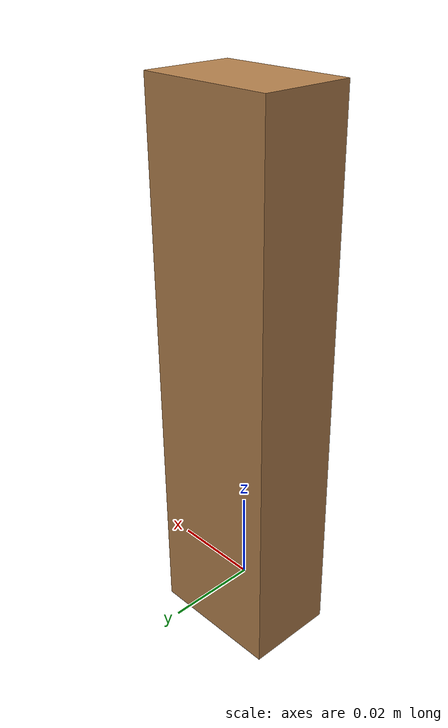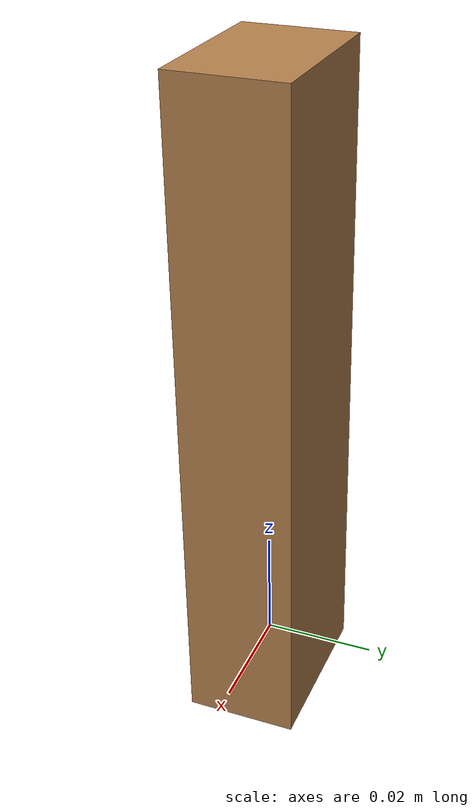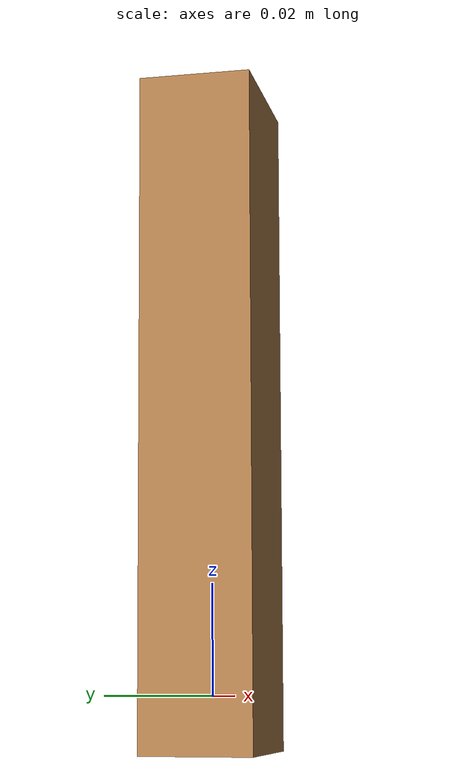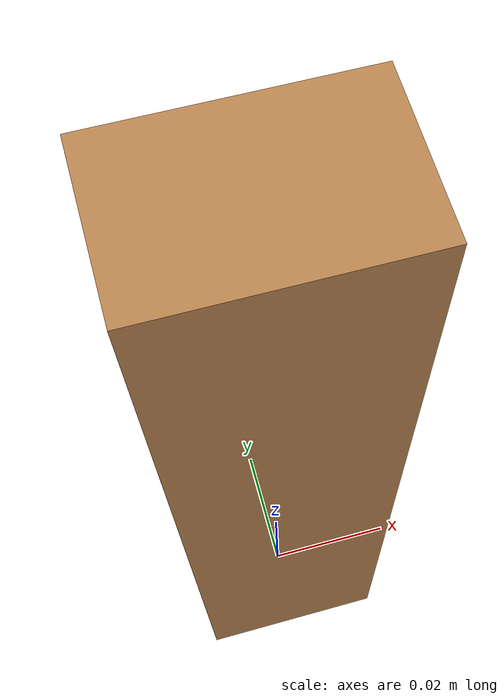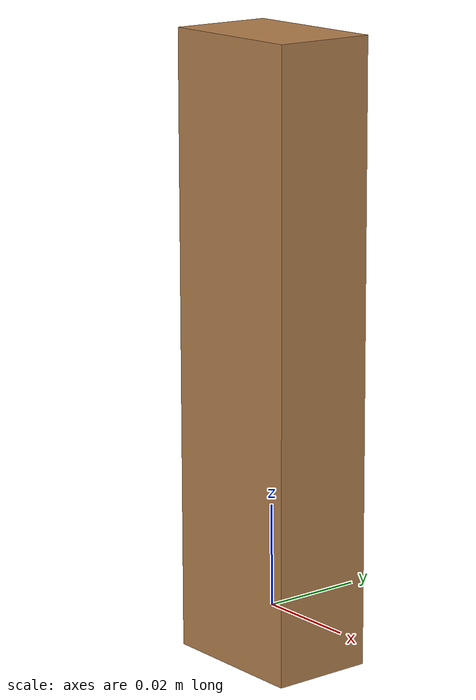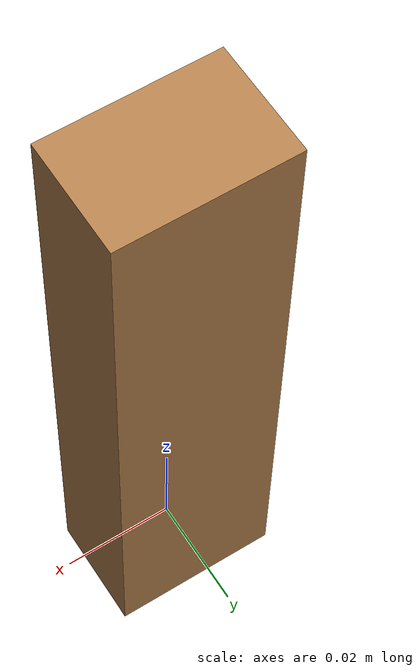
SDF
<?xml version="1.0" ?>
<sdf version="1.5">
  <model name="wood_cube_10cm_with_sensor_3">
    <link name="link">
      <pose>0 0 0.05 0 0 0</pose>
      <inertial>
        <mass>0.5167</mass>
        <inertia>
          <ixx>0.0008611666666666669</ixx>
          <ixy>0</ixy>
          <ixz>0</ixz>
          <iyy>0.0008611666666666669</iyy>
          <iyz>0</iyz>
          <izz>0.0008611666666666669</izz>
        </inertia>
      </inertial>

      <collision name="collision">
        <geometry>
          <box>
            <size>0.03 0.02 0.12</size>
          </box>
        </geometry>
        <surface>
          <contact>
            <!-- Red Pine coefficients for longitudinal axis of the wood
                 according to:
                 http://www.fpl.fs.fed.us/documnts/fplgtr/fplgtr113/ch04.pdf -->
            <poissons_ratio>0.347</poissons_ratio>
            <elastic_modulus>8.8e+09</elastic_modulus>
            <ode>
              <kp>100000</kp>
              <kd>100</kd>
              <max_vel>100.0</max_vel>
              <min_depth>0.001</min_depth>
            </ode>
          </contact>
          <friction>
            <torsional>
              <coefficient>1.0</coefficient>
              <use_patch_radius>0</use_patch_radius>
              <surface_radius>0.01</surface_radius>
            </torsional>
          </friction>
        </surface>
      </collision>

      <visual name="visual">
        <geometry>
          <box>
            <size>0.03 0.02 0.12</size>
          </box>
        </geometry>
        <material>
          <script>
            <uri>file://media/materials/scripts/gazebo.material</uri>
            <name>Gazebo/Wood</name>
          </script>
        </material>
      </visual>
    </link>
    <!-- *********************** ULTRASONIC SENSOR ************************  -->
    <link name="hokuyo_link">
      <!-- Visuals / Collisions omitted for this example -->
      <pose>0.015 0.01 0.235 0 0 0</pose>
      <inertial>
        <mass>0.5167</mass>
        <inertia>
          <ixx>0.0008611666666666669</ixx>
          <ixy>0</ixy>
          <ixz>0</ixz>
          <iyy>0.0008611666666666669</iyy>
          <iyz>0</iyz>
          <izz>0.0008611666666666669</izz>
        </inertia>
      </inertial>
      <collision name="collision">
        <geometry>
          <box>
            <size>0.05 0.02 0.235</size>
          </box>
        </geometry>
        <surface>
          <contact>
            <!-- Red Pine coefficients for longitudinal axis of the wood
                 according to:
                 http://www.fpl.fs.fed.us/documnts/fplgtr/fplgtr113/ch04.pdf -->
            <poissons_ratio>0.347</poissons_ratio>
            <elastic_modulus>8.8e+09</elastic_modulus>
            <ode>
              <kp>100000</kp>
              <kd>100</kd>
              <max_vel>100.0</max_vel>
              <min_depth>0.001</min_depth>
            </ode>
          </contact>
          <friction>
            <torsional>
              <coefficient>1.0</coefficient>
              <use_patch_radius>0</use_patch_radius>
              <surface_radius>0.01</surface_radius>
            </torsional>
          </friction>
        </surface>
      </collision>
      <sensor type="ray" name="head_hokuyo_sensor">
        <always_on>true</always_on>
        <visualize>true</visualize>
        <ray>
          <scan>
            <horizontal>
              <samples>1000</samples>
              <resolution>0.1</resolution>
              <min_angle>-1.570796326</min_angle>
              <max_angle>1.570796326</max_angle>
            </horizontal>
          </scan>
          <range>
            <min>0.10</min>
            <max>1.0</max>
            <resolution>0.05</resolution>
          </range>
        </ray>
        <plugin name="gazebo_ros_head_hokuyo_controller" filename="libgazebo_ros_laser.so">
          <topicName>/wx200/sensor/sonar_front4</topicName>
          <frameName>hokuyo_link</frameName>
          <gaussianNoise>0.01</gaussianNoise>
          <updateRate>10</updateRate>
        </plugin>
      </sensor>
    </link>
  </model>
</sdf>
